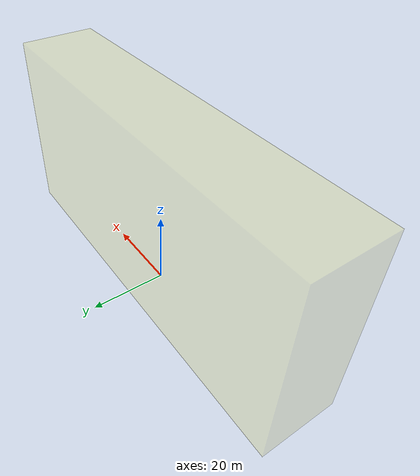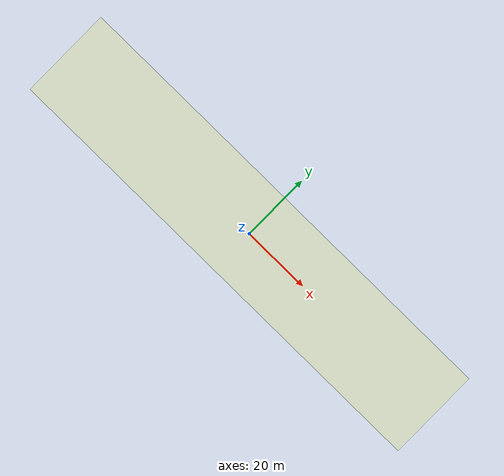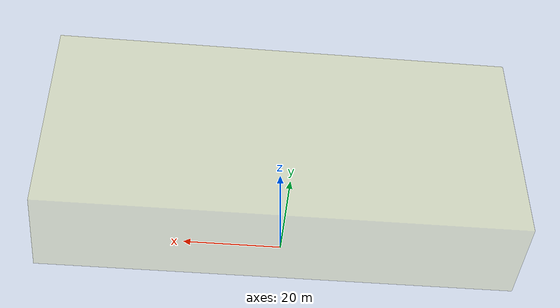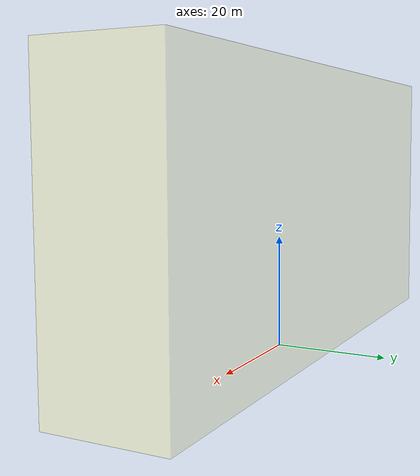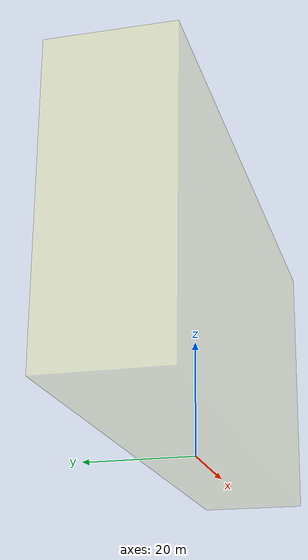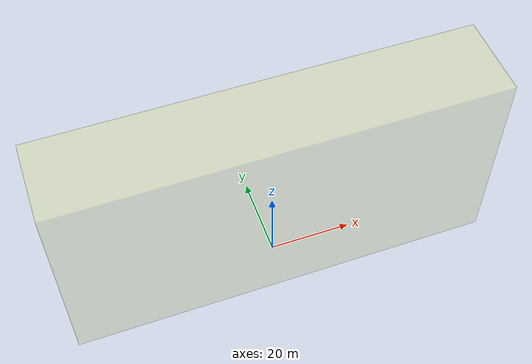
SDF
<?xml version="1.0" ?>
<sdf version="1.5">
  <model name="regroup_box">
    <static>true</static>
    <link name="link">
      <visual name="visual">
        <cast_shadows>0</cast_shadows>
        <transparency>0.8</transparency>
        <pose>0 0 25 0 0 0</pose>
        <cast_shadows>true</cast_shadows>
        <geometry>
            <box><size>102 20 50</size></box>
        </geometry>
        <material>
          <script>
            <uri>file://media/materials/scripts/gazebo.material</uri>
            <name>Gazebo/YellowTransparent</name>
          </script>
        </material>
    </visual>
    </link>
  </model>
</sdf>
